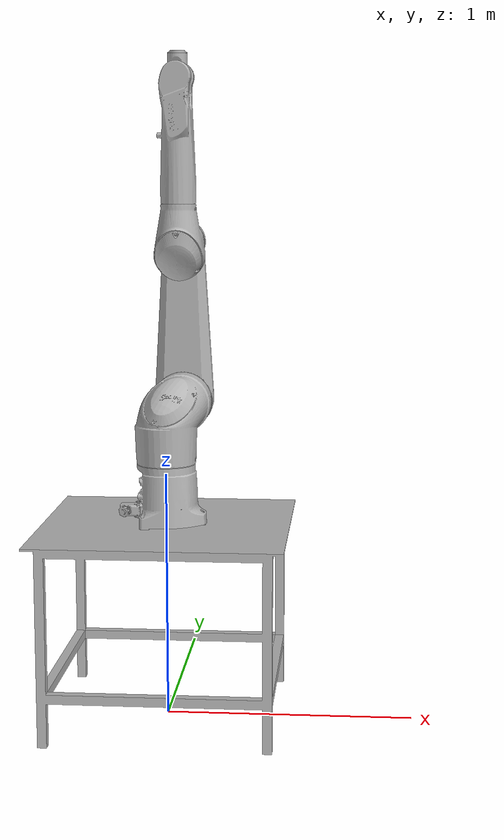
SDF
<sdf version='1.5'>
  <model name='TX90XLHB'>
    <static>false</static>

    <link name="table">
      <pose> 0 0 0.4 0 -0 0 </pose>
      <collision name="collision">
        <geometry>
          <box>
            <size>1 0.95 0.8</size>
          </box>
        </geometry>
      </collision>

      <visual name="visual">
        <pose>0 0 0.4 -1.5707 0 0</pose>
        <geometry>
          <mesh>
            <scale>1 1 1</scale>
            <uri>meshes/table.dae</uri>
          </mesh>
        </geometry>
      </visual>
    </link>

    <joint name="fix to ground" type="revolute">
      <parent>world</parent>
      <child>table</child>
      <axis>
        <xyz>0.0 0.0 1.0</xyz>
        <limit>
          <lower>0</lower>
          <upper>0</upper>
        </limit>
      </axis>
    </joint>

    <link name='base_link'>
      <pose>0 0 0.8 0 -0 0</pose>
      <inertial>
        <pose>0.00806958 -0.000142981 0.120127 0 -0 0</pose>
        <mass>11.2578</mass>
        <inertia>
          <ixx>0.0992408</ixx>
          <ixy>0.000276425</ixy>
          <ixz>-0.000411716</ixz>
          <iyy>0.0991641</iyy>
          <iyz>9.67008e-05</iyz>
          <izz>0.0916741</izz>
        </inertia>
      </inertial>
      <collision name='base_link_collision'>
        <pose>0 0 0 0 -0 0</pose>
        <geometry>
          <mesh>
            <scale>1 1 1</scale>
            <uri>meshes/base_link.dae</uri>
          </mesh>
        </geometry>
      </collision>
      <visual name='base_link_visual'>
        <pose>0 0 0 0 -0 0</pose>
        <geometry>
          <mesh>
            <scale>1 1 1</scale>
            <uri>meshes/base_link.dae</uri>
          </mesh>
        </geometry>
        <material>
            <script>Gazebo/WoodPallet</script>
        </material>

      </visual>
      <velocity_decay>
        <linear>0</linear>
        <angular>0</angular>
      </velocity_decay>

    </link>

    <joint name="fix to table" type="revolute">
      <parent>table</parent>
      <child>base_link</child>
      <axis>
        <xyz>0.0 0.0 1</xyz>
        <limit>
          <lower>0</lower>
          <upper>0</upper>
        </limit>
      </axis>
    </joint>

    <link name='shoulder_link'>
      <pose>0 0 1.278 0 0 0</pose>
      <inertial>
        <pose>0.0191425 0.0247638 -0.0645956 0 -0 0</pose>
        <mass>16.9346</mass>
        <inertia>
          <ixx>0.222318</ixx>
          <ixy>0.0164995</ixy>
          <ixz>0.0237943</ixz>
          <iyy>0.208959</iyy>
          <iyz>0.031663</iyz>
          <izz>0.157081</izz>
        </inertia>
      </inertial>
      <collision name='shoulder_link_collision'>
        <pose>0 0 0 0 -0 0</pose>
        <geometry>
          <mesh>
            <scale>1 1 1</scale>
            <uri>meshes/shoulder_link.dae</uri>
          </mesh>
        </geometry>
      </collision>
      <visual name='shoulder_link_visual'>
        <pose>0 0 0 0 -0 0</pose>
        <geometry>
          <mesh>
            <scale>1 1 1</scale>
            <uri>meshes/shoulder_link.dae</uri>
          </mesh>
        </geometry>
      </visual>
      <velocity_decay>
        <linear>0</linear>
        <angular>0</angular>
      </velocity_decay>
    </link>

    <joint name='joint1' type='revolute'>
      <child>shoulder_link</child>
      <parent>base_link</parent>
      <axis>
        <xyz>0 0 1</xyz>
        <limit>
          <lower>-3.1416</lower>
          <upper>3.1416</upper>
          <effort>0</effort>
          <velocity>0</velocity>
        </limit>
        <dynamics>
          <spring_reference>0</spring_reference>
          <spring_stiffness>0</spring_stiffness>
        </dynamics>
        <use_parent_model_frame>0</use_parent_model_frame>
      </axis>
    </joint>

    <link name='arm_link'>
      <pose>0.05 0 1.278 0 -0 0</pose>
      <inertial>
        <pose>-4.9783e-06 0.219316 0.276936 0 -0 0</pose>
        <mass>17.7893</mass>
        <inertia>
          <ixx>1.07153</ixx>
          <ixy>4.9278e-06</ixy>
          <ixz>-1.54101e-05</ixz>
          <iyy>1.10864</iyy>
          <iyz>-0.00765188</iyz>
          <izz>0.0740222</izz>
        </inertia>
      </inertial>
      <collision name='arm_link_collision'>
        <pose>0 0 0 0 -0 0</pose>
        <geometry>
          <mesh>
            <scale>1 1 1</scale>
            <uri>meshes/arm_link.dae</uri>
          </mesh>
        </geometry>
      </collision>
      <visual name='arm_link_visual'>
        <pose>0 0 0 0 -0 0</pose>
        <geometry>
          <mesh>
            <scale>1 1 1</scale>
            <uri>meshes/arm_link.dae</uri>
          </mesh>
        </geometry>
      </visual>
      <velocity_decay>
        <linear>0</linear>
        <angular>0</angular>
      </velocity_decay>
    </link>

    <joint name='joint2' type='revolute'>
      <child>arm_link</child>
      <parent>shoulder_link</parent>
      <axis>
        <xyz>0 1 0</xyz>
        <limit>
          <lower>-2.2689</lower>
          <upper>2.5744</upper>
          <effort>0</effort>
          <velocity>0</velocity>
        </limit>
        <dynamics>
          <spring_reference>0</spring_reference>
          <spring_stiffness>0</spring_stiffness>
        </dynamics>
        <use_parent_model_frame>0</use_parent_model_frame>
      </axis>
    </joint>

    <link name='elbow_link'>
      <pose>0.05 0.05 1.928 0 -0 0</pose>
      <inertial>
        <pose>1.67038e-06 0.0150084 0.00357212 0 -0 0</pose>
        <mass>7.5015</mass>
        <inertia>
          <ixx>0.0589016</ixx>
          <ixy>6.09678e-08</ixy>
          <ixz>8.10671e-07</ixz>
          <iyy>0.0568838</iyy>
          <iyz>-0.00367171</iyz>
          <izz>0.0342714</izz>
        </inertia>
      </inertial>
      <collision name='elbow_link_collision'>
        <pose>0 0 0 0 -0 0</pose>
        <geometry>
          <mesh>
            <scale>1 1 1</scale>
            <uri>meshes/elbow_link.dae</uri>
          </mesh>
        </geometry>
      </collision>
      <visual name='elbow_link_visual'>
        <pose>0 0 0 0 -0 0</pose>
        <geometry>
          <mesh>
            <scale>1 1 1</scale>
            <uri>meshes/elbow_link.dae</uri>
          </mesh>
        </geometry>
      </visual>
      <velocity_decay>
        <linear>0</linear>
        <angular>0</angular>
      </velocity_decay>
    </link>

    <joint name='joint3' type='revolute'>
      <child>elbow_link</child>
      <parent>arm_link</parent>
      <axis>
        <xyz>0 1 0</xyz>
        <limit>
          <lower>-2.5307</lower>
          <upper>2.5307</upper>
          <effort>0</effort>
          <velocity>0</velocity>
        </limit>
        <dynamics>
          <spring_reference>0</spring_reference>
          <spring_stiffness>0</spring_stiffness>
        </dynamics>
        <use_parent_model_frame>0</use_parent_model_frame>
      </axis>
    </joint>

    <link name='forearm_link'>
      <pose>0.05 0.05 1.928 0 -0 0</pose>
      <inertial>
        <pose>-0.00174609 6.47694e-06 0.410582 0 -0 0</pose>
        <mass>7.91679</mass>
        <inertia>
          <ixx>0.188254</ixx>
          <ixy>4.18687e-05</ixy>
          <ixz>-0.00199749</ixz>
          <iyy>0.182701</iyy>
          <iyz>4.70447e-06</iyz>
          <izz>0.0226841</izz>
        </inertia>
      </inertial>
      <collision name='forearm_link_collision'>
        <pose>0 0 0 0 -0 0</pose>
        <geometry>
          <mesh>
            <scale>1 1 1</scale>
            <uri>meshes/forearm_link.dae</uri>
          </mesh>
        </geometry>
      </collision>
      <visual name='forearm_link_visual'>
        <pose>0 0 0 0 -0 0</pose>
        <geometry>
          <mesh>
            <scale>1 1 1</scale>
            <uri>meshes/forearm_link.dae</uri>
          </mesh>
        </geometry>
      </visual>
      <velocity_decay>
        <linear>0</linear>
        <angular>0</angular>
      </velocity_decay>
    </link>

    <joint name='joint4' type='revolute'>
      <child>forearm_link</child>
      <parent>elbow_link</parent>
      <axis>
        <xyz>0 0 1</xyz>
        <limit>
          <lower>-4.7124</lower>
          <upper>4.7124</upper>
          <effort>0</effort>
          <velocity>0</velocity>
        </limit>
        <dynamics>
          <spring_reference>0</spring_reference>
          <spring_stiffness>0</spring_stiffness>
        </dynamics>
        <use_parent_model_frame>0</use_parent_model_frame>
      </axis>
    </joint>

    <link name='wrist_link'>
      <pose>0.05 0.05 2.578 0 -0 0</pose>
      <inertial>
        <pose>-6.66073e-07 -6.94402e-05 0.0228231 0 -0 0</pose>
        <mass>0.56876</mass>
        <inertia>
          <ixx>0.00108368</ixx>
          <ixy>-2.71193e-07</ixy>
          <ixz>-2.33484e-09</ixz>
          <iyy>0.00112284</iyy>
          <iyz>8.99392e-07</iyz>
          <izz>0.000382707</izz>
        </inertia>
      </inertial>
      <collision name='wrist_link_collision'>
        <pose>0 0 0 0 -0 0</pose>
        <geometry>
          <mesh>
            <scale>1 1 1</scale>
            <uri>meshes/wrist_link.dae</uri>
          </mesh>
        </geometry>
      </collision>
      <visual name='wrist_link_visual'>
        <pose>0 0 0 0 -0 0</pose>
        <geometry>
          <mesh>
            <scale>1 1 1</scale>
            <uri>meshes/wrist_link.dae</uri>
          </mesh>
        </geometry>
      </visual>
      <velocity_decay>
        <linear>0</linear>
        <angular>0</angular>
      </velocity_decay>
    </link>

    <joint name='joint5' type='revolute'>
      <child>wrist_link</child>
      <parent>forearm_link</parent>
      <axis>
        <xyz>-0.0069765 +0.99998 0</xyz>
        <limit>
          <lower>-2.0071</lower>
          <upper>2.4435</upper>
          <effort>0</effort>
          <velocity>0</velocity>
        </limit>
        <dynamics>
          <spring_reference>0</spring_reference>
          <spring_stiffness>0</spring_stiffness>
        </dynamics>
        <use_parent_model_frame>0</use_parent_model_frame>
      </axis>
    </joint>

    <link name='toolflange_link'>
      <pose>0.05 0.05 2.678 0 -0 0</pose>
      <inertial>
        <pose>-0.000242737 1.40004e-06 -0.00629326 0 -0 0</pose>
        <mass>0.0309772</mass>
        <inertia>
          <ixx>1.16125e-05</ixx>
          <ixy>4.20317e-11</ixy>
          <ixz>-8.09186e-09</ixz>
          <iyy>1.14243e-05</iyy>
          <iyz>2.80063e-11</iyz>
          <izz>2.24828e-05</izz>
        </inertia>
      </inertial>
      <collision name='toolflange_link_collision'>
        <pose>0 0 0 0 -0 0</pose>
        <geometry>
          <mesh>
            <scale>1 1 1</scale>
            <uri>meshes/toolflange_link.dae</uri>
          </mesh>
        </geometry>
      </collision>
      <visual name='toolflange_link_visual'>
        <pose>0 0 0 0 -0 0</pose>
        <geometry>
          <mesh>
            <scale>1 1 1</scale>
            <uri>meshes/toolflange_link.dae</uri>
          </mesh>
        </geometry>
      </visual>
      <velocity_decay>
        <linear>0</linear>
        <angular>0</angular>
      </velocity_decay>
    </link>

    <joint name='joint6' type='revolute'>
      <child>toolflange_link</child>
      <parent>wrist_link</parent>
      <axis>
        <xyz>0 0 1</xyz>
        <limit>
          <lower>-4.7124</lower>
          <upper>4.7124</upper>
          <effort>0</effort>
          <velocity>0</velocity>
        </limit>
        <dynamics>
          <spring_reference>0</spring_reference>
          <spring_stiffness>0</spring_stiffness>
        </dynamics>
        <use_parent_model_frame>0</use_parent_model_frame>
      </axis>
    </joint>
  </model>

</sdf>
